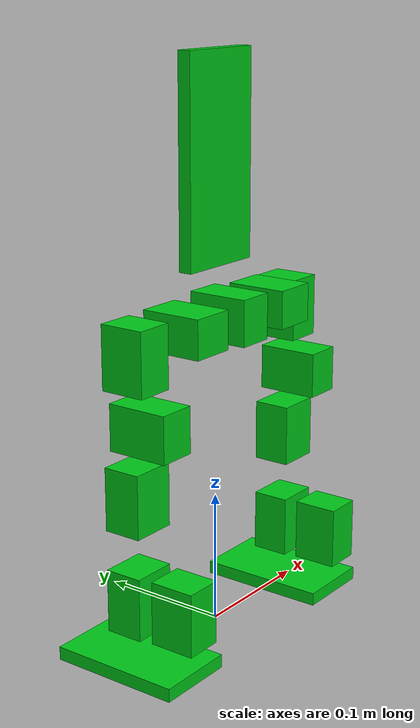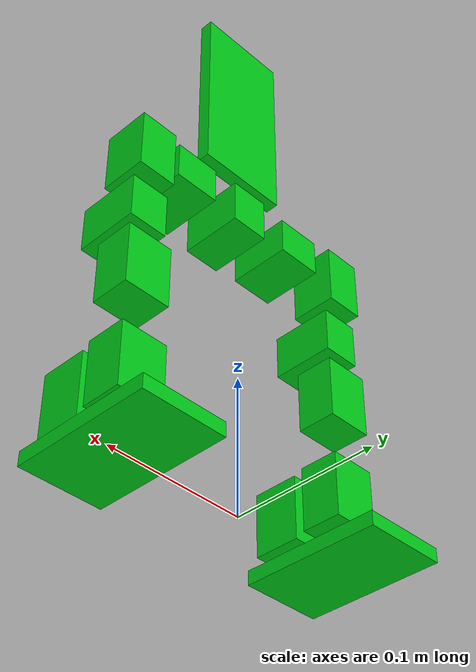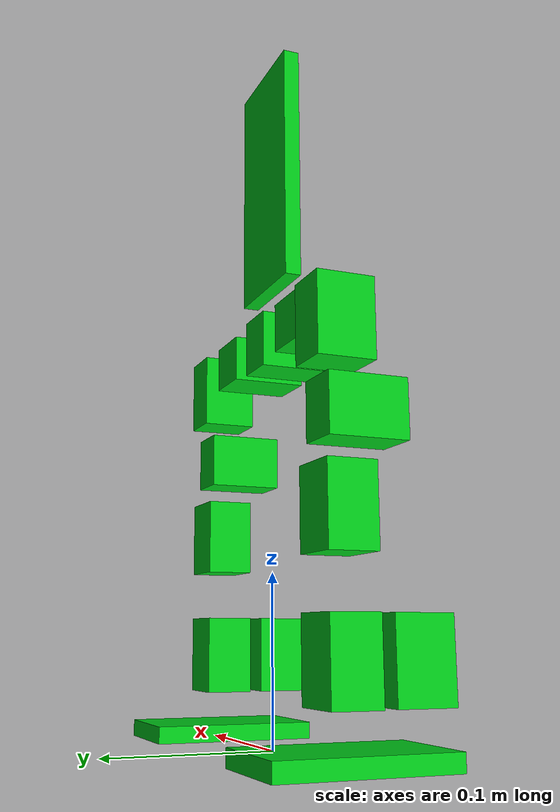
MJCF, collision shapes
<mujoco model="phonebot">
  <default>
    <default class="robot">
      <default class="motor">
        <joint />
        <motor />
        </default>
      <default class="visual">
        <geom material="visualgeom" contype="0" conaffinity="0" group="2" />
        </default>
      <default class="collision">
        <geom material="collision_material" condim="3" contype="0" conaffinity="1" priority="1" group="1" solref="0.005 1" solimp="0.99 0.999 1e-05" friction="1 0.01 0.01" />
        </default>
      </default>
    </default>
  <compiler angle="radian" />
  <asset>
    <material name="motor_gray" rgba="0.89804 0.91765 0.92941 1.0" />
    <material name="default_material" rgba="0.7 0.7 0.7 1" />
    <material name="collision_material" rgba="0.0 0.8 0.1 1.0" />
    <mesh name="XL-430_new_coordinate_on_axis.STL" file="/media/hrc/T7_UBUNTU_ONLY/Codesign_ChopstickBot_all_files/reference/xm430_motor/good_conversion_stl/XL-430_new_coordinate_on_axis.STL" scale="0.001000 0.001000 0.001000" />
    </asset>
  <worldbody>
    <body name="base_motor_link" pos="0.00000000 0.00000000 0.23999999" quat="1 0 0 0" childclass="robot">
      <freejoint name="floating_base" />
      <geom name="base_motor_link_collision" pos="0.000000 -0.012000 0.000000" quat="1.0 0.0 0.0 0.0" type="box" size="0.01425 0.02325 0.017" class="collision" />
      <geom name="base_motor_link_visual" pos="0.000000 0.000000 0.000000" quat="1.0 0.0 0.0 0.0" material="motor_gray" type="mesh" mesh="XL-430_new_coordinate_on_axis.STL" class="visual" />
      <body name="l_hip_pitch_mount" pos="-0.050000 0.000000 0.000000" quat="0.7071068967259818 0.0 -0.7071066656470943 0.0">
        <inertial pos="0.000000 0.000000 0.000000" quat="1.0 0.0 0.0 0.0" mass="0.001000" diaginertia="2e-08 2e-08 2e-08" />
        <body name="l_hip_pitch" pos="0.000000 0.000000 0.000000" quat="1.0 0.0 0.0 0.0">
          <inertial pos="0.000000 -0.012000 0.000000" quat="1.0 0.0 0.0 0.0" mass="0.065000" diaginertia="1.797e-05 1.066e-05 1.611e-05" />
          <geom name="l_hip_pitch_collision" pos="0.000000 -0.012000 0.000000" quat="1.0 0.0 0.0 0.0" type="box" size="0.01425 0.02325 0.017" class="collision" />
          <geom name="l_hip_pitch_visual" pos="0.000000 0.000000 0.000000" quat="1.0 0.0 0.0 0.0" material="motor_gray" type="mesh" mesh="XL-430_new_coordinate_on_axis.STL" class="visual" />
          <body name="l_hip_roll" pos="0.000000 0.000000 0.040000" quat="0.5000001633974483 -0.49999983660255165 -0.4999999999999733 -0.4999999999999733">
            <joint name="l_hip_pitch_joint" type="hinge" ref="0.0" class="motor" range="-3.14159 3.14159" axis="1.000000 0.000000 0.000000" />
            <site name="l_hip_pitch_joint_site" pos="0 0 0" quat="1 0 0 0" />
            <inertial pos="0.000000 -0.012000 0.000000" quat="1.0 0.0 0.0 0.0" mass="0.065000" diaginertia="1.797e-05 1.066e-05 1.611e-05" />
            <geom name="l_hip_roll_collision" pos="0.000000 -0.012000 0.000000" quat="1.0 0.0 0.0 0.0" type="box" size="0.01425 0.02325 0.017" class="collision" />
            <geom name="l_hip_roll_visual" pos="0.000000 0.000000 0.000000" quat="1.0 0.0 0.0 0.0" material="motor_gray" type="mesh" mesh="XL-430_new_coordinate_on_axis.STL" class="visual" />
            <body name="l_hip_roll_joint_frame" pos="0.000000 0.000000 0.000000" quat="1.0 0.0 0.0 0.0">
              <joint name="l_hip_roll_joint" type="hinge" ref="0.0" class="motor" range="-3.14159 3.14159" axis="0.000000 0.000000 1.000000" />
              <site name="l_hip_roll_joint_site" pos="0 0 0" quat="1 0 0 0" />
              <inertial pos="0.000000 0.000000 0.000000" quat="1.0 0.0 0.0 0.0" mass="0.001000" diaginertia="2e-08 2e-08 2e-08" />
              <body name="l_hip_thigh_joint_frame" pos="0.000000 -0.060000 0.000000" quat="1.0 0.0 0.0 0.0">
                <joint name="l_hip_thigh_joint" type="hinge" ref="0.0" class="motor" range="-3.14159 3.14159" axis="0.000000 0.000000 1.000000" />
                <site name="l_hip_thigh_joint_site" pos="0 0 0" quat="1 0 0 0" />
                <inertial pos="0.000000 0.000000 0.000000" quat="1.0 0.0 0.0 0.0" mass="0.001000" diaginertia="2e-08 2e-08 2e-08" />
                <body name="l_hip_thigh" pos="0.000000 0.000000 0.000000" quat="0.7071068967259818 0.7071066656470943 0.0 0.0">
                  <inertial pos="0.000000 -0.012000 0.000000" quat="1.0 0.0 0.0 0.0" mass="0.065000" diaginertia="1.797e-05 1.066e-05 1.611e-05" />
                  <geom name="l_hip_thigh_collision" pos="0.000000 -0.012000 0.000000" quat="1.0 0.0 0.0 0.0" type="box" size="0.01425 0.02325 0.017" class="collision" />
                  <geom name="l_hip_thigh_visual" pos="0.000000 0.000000 0.000000" quat="1.0 0.0 0.0 0.0" material="motor_gray" type="mesh" mesh="XL-430_new_coordinate_on_axis.STL" class="visual" />
                  <body name="l_hip_calf_joint_frame" pos="0.000000 0.000000 0.040000" quat="1.0 0.0 0.0 0.0">
                    <joint name="l_hip_calf_joint" type="hinge" ref="0.0" class="motor" range="-3.14159 3.14159" axis="0.000000 0.000000 1.000000" />
                    <site name="l_hip_calf_joint_site" pos="0 0 0" quat="1 0 0 0" />
                    <inertial pos="0.000000 0.000000 0.000000" quat="1.0 0.0 0.0 0.0" mass="0.001000" diaginertia="2e-08 2e-08 2e-08" />
                    <body name="l_hip_calf" pos="0.000000 0.000000 0.000000" quat="0.5000001633974483 -0.4999999999999733 0.49999983660255165 -0.4999999999999733">
                      <inertial pos="0.000000 -0.012000 0.000000" quat="1.0 0.0 0.0 0.0" mass="0.065000" diaginertia="1.797e-05 1.066e-05 1.611e-05" />
                      <geom name="l_hip_calf_collision" pos="0.000000 -0.012000 0.000000" quat="1.0 0.0 0.0 0.0" type="box" size="0.01425 0.02325 0.017" class="collision" />
                      <geom name="l_hip_calf_visual" pos="0.000000 0.000000 0.000000" quat="1.0 0.0 0.0 0.0" material="motor_gray" type="mesh" mesh="XL-430_new_coordinate_on_axis.STL" class="visual" />
                      <body name="l_ankle_pitch_joint_frame" pos="0.000000 -0.100000 0.000000" quat="1.0 0.0 0.0 0.0">
                        <joint name="l_ankle_pitch_joint" type="hinge" ref="0.0" class="motor" range="-3.14159 3.14159" axis="0.000000 0.000000 1.000000" />
                        <site name="l_ankle_pitch_joint_site" pos="0 0 0" quat="1 0 0 0" />
                        <inertial pos="0.000000 0.000000 0.000000" quat="1.0 0.0 0.0 0.0" mass="0.001000" diaginertia="2e-08 2e-08 2e-08" />
                        <body name="l_ankle_pitch" pos="0.000000 0.000000 0.000000" quat="-1.7320510330969933e-07 -0.0 0.0 0.999999999999985">
                          <inertial pos="0.000000 -0.012000 0.000000" quat="1.0 0.0 0.0 0.0" mass="0.065000" diaginertia="1.797e-05 1.066e-05 1.611e-05" />
                          <geom name="l_ankle_pitch_collision" pos="0.000000 -0.012000 0.000000" quat="1.0 0.0 0.0 0.0" type="box" size="0.01425 0.02325 0.017" class="collision" />
                          <geom name="l_ankle_pitch_visual" pos="0.000000 0.000000 0.000000" quat="1.0 0.0 0.0 0.0" material="motor_gray" type="mesh" mesh="XL-430_new_coordinate_on_axis.STL" class="visual" />
                          <body name="l_ankle_roll_joint_frame" pos="-0.040000 0.000000 0.000000" quat="1.0 0.0 0.0 0.0">
                            <joint name="l_ankle_roll_joint" type="hinge" ref="0.0" class="motor" range="-3.14159 3.14159" axis="0.000000 0.000000 1.000000" />
                            <site name="l_ankle_roll_joint_site" pos="0 0 0" quat="1 0 0 0" />
                            <inertial pos="0.000000 0.000000 0.000000" quat="1.0 0.0 0.0 0.0" mass="0.001000" diaginertia="2e-08 2e-08 2e-08" />
                            <body name="l_ankle_roll" pos="0.000000 0.000000 0.000000" quat="0.7071068967259818 0.0 0.7071066656470943 0.0">
                              <inertial pos="0.000000 -0.012000 0.000000" quat="1.0 0.0 0.0 0.0" mass="0.065000" diaginertia="1.797e-05 1.066e-05 1.611e-05" />
                              <geom name="l_ankle_roll_collision" pos="0.000000 -0.012000 0.000000" quat="1.0 0.0 0.0 0.0" type="box" size="0.01425 0.02325 0.017" class="collision" />
                              <geom name="l_ankle_roll_visual" pos="0.000000 0.000000 0.000000" quat="1.0 0.0 0.0 0.0" material="motor_gray" type="mesh" mesh="XL-430_new_coordinate_on_axis.STL" class="visual" />
                              <body name="l_foot" pos="0.000000 0.035000 0.040000" quat="0.5000001633974483 0.4999999999999733 -0.4999999999999733 0.49999983660255165">
                                <inertial pos="0.000000 0.000000 0.000000" quat="1.0 0.0 0.0 0.0" mass="0.050000" diaginertia="1.542e-05 4.208e-05 5.667e-05" />
                                <geom name="l_foot_collision" pos="0.000000 0.000000 0.000000" quat="1.0 0.0 0.0 0.0" type="box" size="0.05 0.03 0.005" class="collision" />
                                <geom name="l_foot_visual" pos="0.000000 0.000000 0.000000" quat="1.0 0.0 0.0 0.0" material="motor_gray" type="box" size="0.05 0.03 0.005" class="visual" />
                                </body>
                              </body>
                            </body>
                          </body>
                        </body>
                      </body>
                    </body>
                  </body>
                </body>
              </body>
            </body>
          </body>
        </body>
      <body name="r_hip_pitch_mount" pos="0.050000 0.000000 0.000000" quat="0.7071068967259818 0.0 0.7071066656470943 -0.0">
        <inertial pos="0.000000 0.000000 0.000000" quat="1.0 0.0 0.0 0.0" mass="0.001000" diaginertia="2e-08 2e-08 2e-08" />
        <body name="r_hip_pitch" pos="0.000000 0.000000 0.000000" quat="1.0 0.0 0.0 0.0">
          <inertial pos="0.000000 -0.012000 0.000000" quat="1.0 0.0 0.0 0.0" mass="0.065000" diaginertia="1.797e-05 1.066e-05 1.611e-05" />
          <geom name="r_hip_pitch_collision" pos="0.000000 -0.012000 0.000000" quat="1.0 0.0 0.0 0.0" type="box" size="0.01425 0.02325 0.017" class="collision" />
          <geom name="r_hip_pitch_visual" pos="0.000000 0.000000 0.000000" quat="1.0 0.0 0.0 0.0" material="motor_gray" type="mesh" mesh="XL-430_new_coordinate_on_axis.STL" class="visual" />
          <body name="r_hip_roll" pos="-0.000000 0.000000 0.040000" quat="0.5000001633974483 -0.49999983660255165 0.4999999999999733 0.4999999999999733">
            <joint name="r_hip_pitch_joint" type="hinge" ref="0.0" class="motor" range="-3.14159 3.14159" axis="-1.000000 0.000000 0.000000" />
            <site name="r_hip_pitch_joint_site" pos="0 0 0" quat="1 0 0 0" />
            <inertial pos="0.000000 -0.012000 0.000000" quat="1.0 0.0 0.0 0.0" mass="0.065000" diaginertia="1.797e-05 1.066e-05 1.611e-05" />
            <geom name="r_hip_roll_collision" pos="0.000000 -0.012000 0.000000" quat="1.0 0.0 0.0 0.0" type="box" size="0.01425 0.02325 0.017" class="collision" />
            <geom name="r_hip_roll_visual" pos="0.000000 0.000000 0.000000" quat="1.0 0.0 0.0 0.0" material="motor_gray" type="mesh" mesh="XL-430_new_coordinate_on_axis.STL" class="visual" />
            <body name="r_hip_roll_joint_frame" pos="0.000000 0.000000 0.000000" quat="1.0 0.0 0.0 0.0">
              <joint name="r_hip_roll_joint" type="hinge" ref="0.0" class="motor" range="-3.14159 3.14159" axis="0.000000 0.000000 1.000000" />
              <site name="r_hip_roll_joint_site" pos="0 0 0" quat="1 0 0 0" />
              <inertial pos="0.000000 0.000000 0.000000" quat="1.0 0.0 0.0 0.0" mass="0.001000" diaginertia="2e-08 2e-08 2e-08" />
              <body name="r_hip_thigh_joint_frame" pos="-0.000000 -0.060000 0.000000" quat="1.0 0.0 0.0 0.0">
                <joint name="r_hip_thigh_joint" type="hinge" ref="0.0" class="motor" range="-3.14159 3.14159" axis="0.000000 0.000000 1.000000" />
                <site name="r_hip_thigh_joint_site" pos="0 0 0" quat="1 0 0 0" />
                <inertial pos="0.000000 0.000000 0.000000" quat="1.0 0.0 0.0 0.0" mass="0.001000" diaginertia="2e-08 2e-08 2e-08" />
                <body name="r_hip_thigh" pos="-0.000000 0.000000 0.000000" quat="0.7071068967259818 0.7071066656470943 0.0 0.0">
                  <inertial pos="0.000000 -0.012000 0.000000" quat="1.0 0.0 0.0 0.0" mass="0.065000" diaginertia="1.797e-05 1.066e-05 1.611e-05" />
                  <geom name="r_hip_thigh_collision" pos="0.000000 -0.012000 0.000000" quat="1.0 0.0 0.0 0.0" type="box" size="0.01425 0.02325 0.017" class="collision" />
                  <geom name="r_hip_thigh_visual" pos="0.000000 0.000000 0.000000" quat="1.0 0.0 0.0 0.0" material="motor_gray" type="mesh" mesh="XL-430_new_coordinate_on_axis.STL" class="visual" />
                  <body name="r_hip_calf_joint_frame" pos="-0.000000 0.000000 0.040000" quat="1.0 0.0 0.0 0.0">
                    <joint name="r_hip_calf_joint" type="hinge" ref="0.0" class="motor" range="-3.14159 3.14159" axis="0.000000 0.000000 1.000000" />
                    <site name="r_hip_calf_joint_site" pos="0 0 0" quat="1 0 0 0" />
                    <inertial pos="0.000000 0.000000 0.000000" quat="1.0 0.0 0.0 0.0" mass="0.001000" diaginertia="2e-08 2e-08 2e-08" />
                    <body name="r_hip_calf" pos="-0.000000 0.000000 0.000000" quat="0.5000001633974483 -0.4999999999999733 -0.49999983660255165 0.4999999999999733">
                      <inertial pos="0.000000 -0.012000 0.000000" quat="1.0 0.0 0.0 0.0" mass="0.065000" diaginertia="1.797e-05 1.066e-05 1.611e-05" />
                      <geom name="r_hip_calf_collision" pos="0.000000 -0.012000 0.000000" quat="1.0 0.0 0.0 0.0" type="box" size="0.01425 0.02325 0.017" class="collision" />
                      <geom name="r_hip_calf_visual" pos="0.000000 0.000000 0.000000" quat="1.0 0.0 0.0 0.0" material="motor_gray" type="mesh" mesh="XL-430_new_coordinate_on_axis.STL" class="visual" />
                      <body name="r_ankle_pitch_joint_frame" pos="-0.000000 -0.100000 0.000000" quat="1.0 0.0 0.0 0.0">
                        <joint name="r_ankle_pitch_joint" type="hinge" ref="0.0" class="motor" range="-3.14159 3.14159" axis="0.000000 0.000000 1.000000" />
                        <site name="r_ankle_pitch_joint_site" pos="0 0 0" quat="1 0 0 0" />
                        <inertial pos="0.000000 0.000000 0.000000" quat="1.0 0.0 0.0 0.0" mass="0.001000" diaginertia="2e-08 2e-08 2e-08" />
                        <body name="r_ankle_pitch" pos="-0.000000 0.000000 0.000000" quat="-1.7320510330969933e-07 -0.0 0.0 -0.999999999999985">
                          <inertial pos="0.000000 -0.012000 0.000000" quat="1.0 0.0 0.0 0.0" mass="0.065000" diaginertia="1.797e-05 1.066e-05 1.611e-05" />
                          <geom name="r_ankle_pitch_collision" pos="0.000000 -0.012000 0.000000" quat="1.0 0.0 0.0 0.0" type="box" size="0.01425 0.02325 0.017" class="collision" />
                          <geom name="r_ankle_pitch_visual" pos="0.000000 0.000000 0.000000" quat="1.0 0.0 0.0 0.0" material="motor_gray" type="mesh" mesh="XL-430_new_coordinate_on_axis.STL" class="visual" />
                          <body name="r_ankle_roll_joint_frame" pos="0.040000 0.000000 0.000000" quat="1.0 0.0 0.0 0.0">
                            <joint name="r_ankle_roll_joint" type="hinge" ref="0.0" class="motor" range="-3.14159 3.14159" axis="0.000000 0.000000 1.000000" />
                            <site name="r_ankle_roll_joint_site" pos="0 0 0" quat="1 0 0 0" />
                            <inertial pos="0.000000 0.000000 0.000000" quat="1.0 0.0 0.0 0.0" mass="0.001000" diaginertia="2e-08 2e-08 2e-08" />
                            <body name="r_ankle_roll" pos="-0.000000 0.000000 0.000000" quat="0.7071068967259818 0.0 -0.7071066656470943 0.0">
                              <inertial pos="0.000000 -0.012000 0.000000" quat="1.0 0.0 0.0 0.0" mass="0.065000" diaginertia="1.797e-05 1.066e-05 1.611e-05" />
                              <geom name="r_ankle_roll_collision" pos="0.000000 -0.012000 0.000000" quat="1.0 0.0 0.0 0.0" type="box" size="0.01425 0.02325 0.017" class="collision" />
                              <geom name="r_ankle_roll_visual" pos="0.000000 0.000000 0.000000" quat="1.0 0.0 0.0 0.0" material="motor_gray" type="mesh" mesh="XL-430_new_coordinate_on_axis.STL" class="visual" />
                              <body name="r_foot" pos="-0.000000 0.035000 0.040000" quat="0.5000001633974483 0.49999983660255165 0.4999999999999733 -0.4999999999999733">
                                <inertial pos="0.000000 0.000000 0.000000" quat="1.0 0.0 0.0 0.0" mass="0.050000" diaginertia="1.542e-05 4.208e-05 5.667e-05" />
                                <geom name="r_foot_collision" pos="0.000000 0.000000 0.000000" quat="1.0 0.0 0.0 0.0" type="box" size="0.05 0.03 0.005" class="collision" />
                                <geom name="r_foot_visual" pos="0.000000 0.000000 0.000000" quat="1.0 0.0 0.0 0.0" material="motor_gray" type="box" size="0.05 0.03 0.005" class="visual" />
                                </body>
                              </body>
                            </body>
                          </body>
                        </body>
                      </body>
                    </body>
                  </body>
                </body>
              </body>
            </body>
          </body>
        </body>
      <body name="trunk_link" pos="0.000000 0.000000 0.110000" quat="1.0 0.0 0.0 0.0">
        <joint name="base_to_trunk" type="hinge" ref="0.0" class="motor" range="-3.14159 3.14159" axis="0.000000 0.000000 1.000000" />
        <site name="base_to_trunk_site" pos="0 0 0" quat="1 0 0 0" />
        <inertial pos="0.000000 0.000000 0.000000" quat="1.0 0.0 0.0 0.0" mass="0.300000" diaginertia="0.000565 0.000685 0.000125" />
        <geom name="trunk_link_collision" pos="0.000000 0.000000 0.000000" quat="1.0 0.0 0.0 0.0" type="box" size="0.035 0.005 0.075" class="collision" />
        <geom name="trunk_link_visual" pos="0.000000 0.000000 0.000000" quat="1.0 0.0 0.0 0.0" material="motor_gray" type="box" size="0.035 0.005 0.075" class="visual" />
        </body>
      <site name="base_motor_link_site" pos="0 0 0" quat="1 0 0 0" />
      <camera name="front_camera" mode="track" fovy="90.0" quat="4.329780281177467e-17 4.329780281177466e-17 0.7071067811865475 0.7071067811865476" pos="0.0 2.0 0.5" />
      <camera name="side_camera" mode="track" fovy="90.0" quat="-0.5 -0.4999999999999999 0.5 0.5000000000000001" pos="-2.0 0.0 0.5" />
      </body>
    </worldbody>
  <actuator>
    <motor name="l_hip_pitch_joint_ctrl" joint="l_hip_pitch_joint" class="motor" />
    <motor name="l_hip_roll_joint_ctrl" joint="l_hip_roll_joint" class="motor" />
    <motor name="l_hip_thigh_joint_ctrl" joint="l_hip_thigh_joint" class="motor" />
    <motor name="l_hip_calf_joint_ctrl" joint="l_hip_calf_joint" class="motor" />
    <motor name="l_ankle_pitch_joint_ctrl" joint="l_ankle_pitch_joint" class="motor" />
    <motor name="l_ankle_roll_joint_ctrl" joint="l_ankle_roll_joint" class="motor" />
    <motor name="r_hip_pitch_joint_ctrl" joint="r_hip_pitch_joint" class="motor" />
    <motor name="r_hip_roll_joint_ctrl" joint="r_hip_roll_joint" class="motor" />
    <motor name="r_hip_thigh_joint_ctrl" joint="r_hip_thigh_joint" class="motor" />
    <motor name="r_hip_calf_joint_ctrl" joint="r_hip_calf_joint" class="motor" />
    <motor name="r_ankle_pitch_joint_ctrl" joint="r_ankle_pitch_joint" class="motor" />
    <motor name="r_ankle_roll_joint_ctrl" joint="r_ankle_roll_joint" class="motor" />
    <motor name="base_to_trunk_ctrl" joint="base_to_trunk" class="motor" />
    </actuator>
  <contact>
    <exclude body1="l_hip_pitch" body2="l_hip_roll" />
    <exclude body1="l_ankle_roll" body2="l_foot" />
    <exclude body1="r_hip_pitch" body2="r_hip_roll" />
    <exclude body1="r_ankle_roll" body2="r_foot" />
    <exclude body1="base_motor_link" body2="trunk_link" />
    </contact>
  <sensor>
    <framepos name="l_hip_pitch_joint_site_pos" objtype="site" objname="l_hip_pitch_joint_site" />
    <framequat name="l_hip_pitch_joint_site_quat" objtype="site" objname="l_hip_pitch_joint_site" />
    <framelinvel name="l_hip_pitch_joint_site_linvel" objtype="site" objname="l_hip_pitch_joint_site" />
    <frameangvel name="l_hip_pitch_joint_site_angvel" objtype="site" objname="l_hip_pitch_joint_site" />
    <velocimeter name="l_hip_pitch_joint_site_vel" site="l_hip_pitch_joint_site" />
    </sensor>
  </mujoco>
